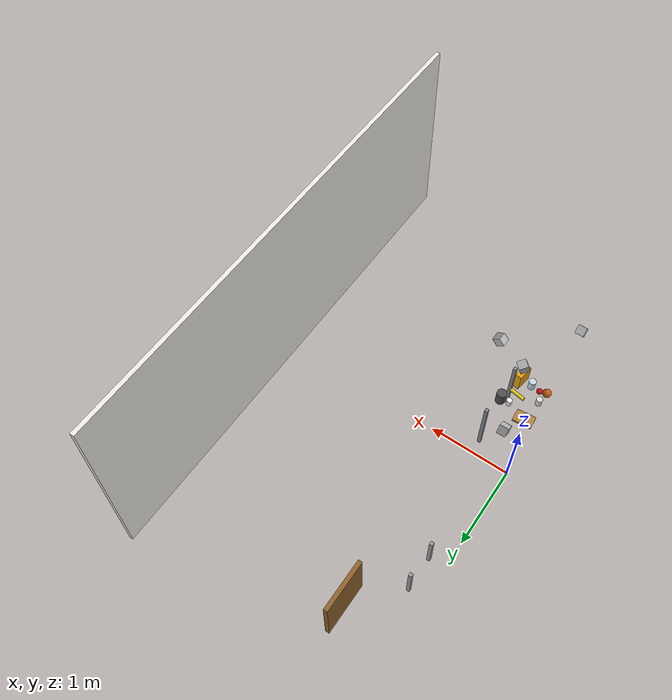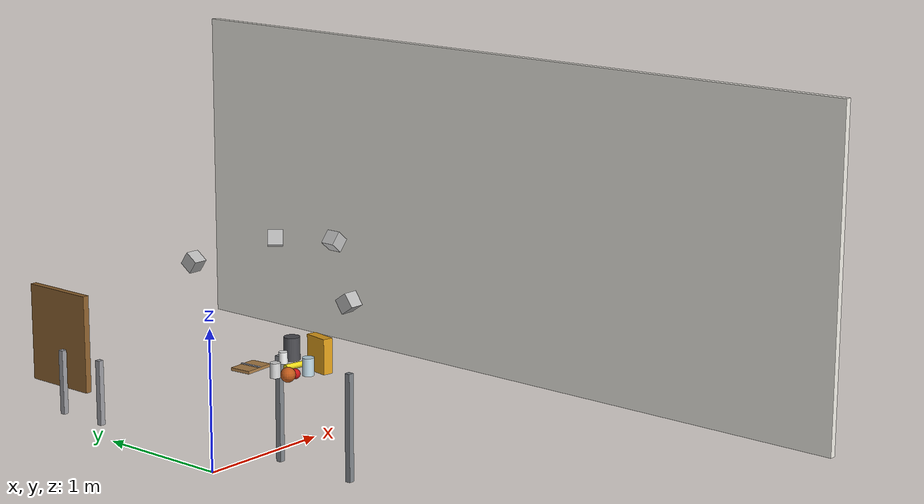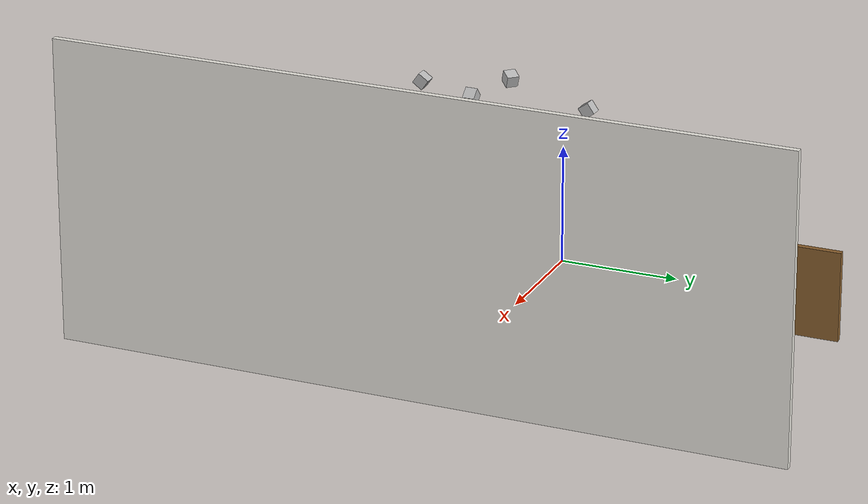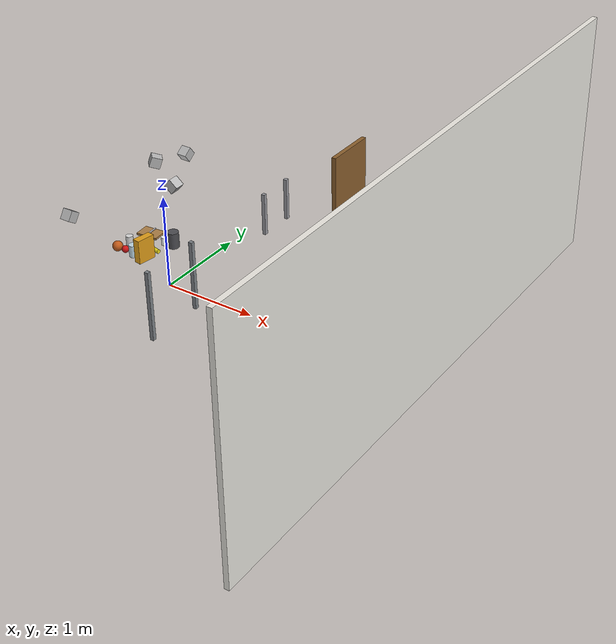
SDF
<sdf version="1.10">
 <world name="bps_room">
  <model name="wall_east">
   <static>true</static>
   <pose>3 0 1.25 0 0 0</pose>
   <link name="link">
    <collision name="collision">
     <geometry><box><size>0.050000000000000003 6 2.5</size></box></geometry>
    </collision>
    <visual name="visual">
     <geometry><box><size>0.050000000000000003 6 2.5</size></box></geometry>
     <material>
      <ambient>0.930000007 0.920000017 0.889999986 1</ambient>
      <diffuse>0.930000007 0.920000017 0.889999986 1</diffuse>
     </material>
    </visual>
    <inertial>
     <mass>1</mass>
     <inertia><ixx>1</ixx><ixy>0</ixy><ixz>0</ixz><iyy>1</iyy><iyz>0</iyz><izz>1</izz></inertia>
    </inertial>
   </link>
  </model>
  <model name="desk_leg_right">
   <static>true</static>
   <pose>0.65000000000000002 2.2999999999999998 0.375 0 0 0</pose>
   <link name="link">
    <collision name="collision">
     <geometry><box><size>0.050000000000000003 0.59999999999999998 0.75</size></box></geometry>
    </collision>
    <visual name="visual">
     <geometry><box><size>0.050000000000000003 0.59999999999999998 0.75</size></box></geometry>
     <material>
      <ambient>0.550000012 0.379999995 0.180000007 1</ambient>
      <diffuse>0.550000012 0.379999995 0.180000007 1</diffuse>
     </material>
    </visual>
    <inertial>
     <mass>1</mass>
     <inertia><ixx>1</ixx><ixy>0</ixy><ixz>0</ixz><iyy>1</iyy><iyz>0</iyz><izz>1</izz></inertia>
    </inertial>
   </link>
  </model>
  <model name="chair_leg_fr">
   <static>true</static>
   <pose>0.20000000000000001 1.3500000000000001 0.23999999999999999 0 0 0</pose>
   <link name="link">
    <collision name="collision">
     <geometry><box><size>0.040000000000000001 0.040000000000000001 0.47999999999999998</size></box></geometry>
    </collision>
    <visual name="visual">
     <geometry><box><size>0.040000000000000001 0.040000000000000001 0.47999999999999998</size></box></geometry>
     <material>
      <ambient>0.600000024 0.600000024 0.620000005 1</ambient>
      <diffuse>0.600000024 0.600000024 0.620000005 1</diffuse>
     </material>
    </visual>
    <inertial>
     <mass>1</mass>
     <inertia><ixx>1</ixx><ixy>0</ixy><ixz>0</ixz><iyy>1</iyy><iyz>0</iyz><izz>1</izz></inertia>
    </inertial>
   </link>
  </model>
  <model name="chair_leg_br">
   <static>true</static>
   <pose>0.20000000000000001 1.75 0.23999999999999999 0 0 0</pose>
   <link name="link">
    <collision name="collision">
     <geometry><box><size>0.040000000000000001 0.040000000000000001 0.47999999999999998</size></box></geometry>
    </collision>
    <visual name="visual">
     <geometry><box><size>0.040000000000000001 0.040000000000000001 0.47999999999999998</size></box></geometry>
     <material>
      <ambient>0.600000024 0.600000024 0.620000005 1</ambient>
      <diffuse>0.600000024 0.600000024 0.620000005 1</diffuse>
     </material>
    </visual>
    <inertial>
     <mass>1</mass>
     <inertia><ixx>1</ixx><ixy>0</ixy><ixz>0</ixz><iyy>1</iyy><iyz>0</iyz><izz>1</izz></inertia>
    </inertial>
   </link>
  </model>
  <model name="table_leg_fr">
   <static>true</static>
   <pose>0.46999999999999997 -0.81999999999999995 0.375 0 0 0</pose>
   <link name="link">
    <collision name="collision">
     <geometry><box><size>0.040000000000000001 0.040000000000000001 0.75</size></box></geometry>
    </collision>
    <visual name="visual">
     <geometry><box><size>0.040000000000000001 0.040000000000000001 0.75</size></box></geometry>
     <material>
      <ambient>0.5 0.519999981 0.540000021 1</ambient>
      <diffuse>0.5 0.519999981 0.540000021 1</diffuse>
     </material>
    </visual>
    <inertial>
     <mass>1</mass>
     <inertia><ixx>1</ixx><ixy>0</ixy><ixz>0</ixz><iyy>1</iyy><iyz>0</iyz><izz>1</izz></inertia>
    </inertial>
   </link>
  </model>
  <model name="table_leg_br">
   <static>true</static>
   <pose>0.46999999999999997 -0.17999999999999999 0.375 0 0 0</pose>
   <link name="link">
    <collision name="collision">
     <geometry><box><size>0.040000000000000001 0.040000000000000001 0.75</size></box></geometry>
    </collision>
    <visual name="visual">
     <geometry><box><size>0.040000000000000001 0.040000000000000001 0.75</size></box></geometry>
     <material>
      <ambient>0.5 0.519999981 0.540000021 1</ambient>
      <diffuse>0.5 0.519999981 0.540000021 1</diffuse>
     </material>
    </visual>
    <inertial>
     <mass>1</mass>
     <inertia><ixx>1</ixx><ixy>0</ixy><ixz>0</ixz><iyy>1</iyy><iyz>0</iyz><izz>1</izz></inertia>
    </inertial>
   </link>
  </model>
  <model name="obj_mug">
   <static>true</static>
   <pose>0.04397289827466011 -0.5601000189781189 0.81999999284744263 0 0 0</pose>
   <link name="link">
    <collision name="collision">
     <geometry>
      <cylinder><radius>0.035000000000000003</radius><length>0.10000000000000001</length></cylinder>
     </geometry>
    </collision>
    <visual name="visual">
     <geometry>
      <cylinder><radius>0.035000000000000003</radius><length>0.10000000000000001</length></cylinder>
     </geometry>
     <material>
      <ambient>0.850000024 0.850000024 0.850000024 1</ambient>
      <diffuse>0.850000024 0.850000024 0.850000024 1</diffuse>
      <specular>0.300000012 0.300000012 0.300000012 1</specular>
     </material>
     <plugin name="gz::sim::systems::Label" filename="gz-sim-label-system"><label>2</label></plugin>
    </visual>
    <inertial>
     <mass>1</mass>
     <inertia><ixx>1</ixx><ixy>0</ixy><ixz>0</ixz><iyy>1</iyy><iyz>0</iyz><izz>1</izz></inertia>
    </inertial>
   </link>
  </model>
  <model name="obj_jar">
   <static>true</static>
   <pose>0.20880027115345001 -0.69999998807907104 0.83499997854232788 0 0 0</pose>
   <link name="link">
    <collision name="collision">
     <geometry><cylinder><radius>0.040000000000000001</radius><length>0.12</length></cylinder></geometry>
    </collision>
    <visual name="visual">
     <geometry><cylinder><radius>0.040000000000000001</radius><length>0.12</length></cylinder></geometry>
     <material>
      <ambient>0.75 0.850000024 0.899999976 1</ambient>
      <diffuse>0.75 0.850000024 0.899999976 1</diffuse>
      <specular>0.600000024 0.600000024 0.600000024 1</specular>
     </material>
     <plugin name="gz::sim::systems::Label" filename="gz-sim-label-system"><label>4</label></plugin>
    </visual>
    <inertial>
     <mass>1</mass>
     <inertia><ixx>1</ixx><ixy>0</ixy><ixz>0</ixz><iyy>1</iyy><iyz>0</iyz><izz>1</izz></inertia>
    </inertial>
   </link>
  </model>
  <model name="obj_cereal_box">
   <static>true</static>
   <pose>0.33500000000000002 -0.68500000000000005 0.89000000000000001 0 0 -0.17449999999999999</pose>
   <link name="link">
    <collision name="collision">
     <geometry><box><size>0.070000000000000007 0.17999999999999999 0.23999999999999999</size></box></geometry>
    </collision>
    <visual name="visual">
     <geometry><box><size>0.070000000000000007 0.17999999999999999 0.23999999999999999</size></box></geometry>
     <material>
      <ambient>0.879999995 0.620000005 0.100000001 1</ambient>
      <diffuse>0.879999995 0.620000005 0.100000001 1</diffuse>
      <specular>0.200000003 0.200000003 0.200000003 1</specular>
     </material>
     <plugin name="gz::sim::systems::Label" filename="gz-sim-label-system"><label>5</label></plugin>
    </visual>
    <inertial>
     <mass>1</mass>
     <inertia><ixx>1</ixx><ixy>0</ixy><ixz>0</ixz><iyy>1</iyy><iyz>0</iyz><izz>1</izz></inertia>
    </inertial>
   </link>
  </model>
  <model name="obj_banana">
   <static>true</static>
   <pose>0.28413727879524231 -0.52103340625762939 0.79000020027160645 1.5708000019094897 5.2218038781859404e-08 1.3963000140670436</pose>
   <link name="link">
    <collision name="collision">
     <geometry><cylinder><radius>0.02</radius><length>0.17999999999999999</length></cylinder></geometry>
    </collision>
    <visual name="visual">
     <geometry><cylinder><radius>0.02</radius><length>0.17999999999999999</length></cylinder></geometry>
     <material>
      <ambient>0.920000017 0.850000024 0.100000001 1</ambient>
      <diffuse>0.920000017 0.850000024 0.100000001 1</diffuse>
      <specular>0.300000012 0.300000012 0.300000012 1</specular>
     </material>
     <plugin name="gz::sim::systems::Label" filename="gz-sim-label-system"><label>6</label></plugin>
    </visual>
    <inertial>
     <mass>1</mass>
     <inertia><ixx>1</ixx><ixy>0</ixy><ixz>0</ixz><iyy>1</iyy><iyz>0</iyz><izz>1</izz></inertia>
    </inertial>
   </link>
  </model>
  <model name="obj_bowl">
   <static>true</static>
   <pose>0.02 -0.69999999999999996 0.81999999999999995 0 0 0</pose>
   <link name="link">
    <collision name="collision">
     <geometry><sphere><radius>0.050000000000000003</radius></sphere></geometry>
    </collision>
    <visual name="visual">
     <geometry><sphere><radius>0.050000000000000003</radius></sphere></geometry>
     <material>
      <ambient>0.75 0.349999994 0.100000001 1</ambient>
      <diffuse>0.75 0.349999994 0.100000001 1</diffuse>
      <specular>0.300000012 0.300000012 0.300000012 1</specular>
     </material>
     <plugin name="gz::sim::systems::Label" filename="gz-sim-label-system"><label>7</label></plugin>
    </visual>
    <inertial>
     <mass>1</mass>
     <inertia><ixx>1</ixx><ixy>0</ixy><ixz>0</ixz><iyy>1</iyy><iyz>0</iyz><izz>1</izz></inertia>
    </inertial>
   </link>
  </model>
  <model name="obj_apple">
   <static>true</static>
   <pose>0.10000000000000001 -0.68500000000000005 0.80500000000000005 0 0 0</pose>
   <link name="link">
    <collision name="collision">
     <geometry><sphere><radius>0.035000000000000003</radius></sphere></geometry>
    </collision>
    <visual name="visual">
     <geometry><sphere><radius>0.035000000000000003</radius></sphere></geometry>
     <material>
      <ambient>0.800000012 0.0799999982 0.0799999982 1</ambient>
      <diffuse>0.800000012 0.0799999982 0.0799999982 1</diffuse>
      <specular>0.400000006 0.400000006 0.400000006 1</specular>
     </material>
     <plugin name="gz::sim::systems::Label" filename="gz-sim-label-system"><label>8</label></plugin>
    </visual>
    <inertial>
     <mass>1</mass>
     <inertia><ixx>1</ixx><ixy>0</ixy><ixz>0</ixz><iyy>1</iyy><iyz>0</iyz><izz>1</izz></inertia>
    </inertial>
   </link>
  </model>
  <model name="obj_kettle">
   <static>true</static>
   <pose>0.40999999999999998 -0.35999999999999999 0.84999999999999998 0 0 0</pose>
   <link name="link">
    <collision name="collision">
     <geometry><cylinder><radius>0.055</radius><length>0.16</length></cylinder></geometry>
    </collision>
    <visual name="visual">
     <geometry><cylinder><radius>0.055</radius><length>0.16</length></cylinder></geometry>
     <material>
      <ambient>0.300000012 0.300000012 0.319999993 1</ambient>
      <diffuse>0.300000012 0.300000012 0.319999993 1</diffuse>
      <specular>0.600000024 0.600000024 0.600000024 1</specular>
     </material>
     <plugin name="gz::sim::systems::Label" filename="gz-sim-label-system"><label>13</label></plugin>
    </visual>
    <inertial>
     <mass>1</mass>
     <inertia><ixx>1</ixx><ixy>0</ixy><ixz>0</ixz><iyy>1</iyy><iyz>0</iyz><izz>1</izz></inertia>
    </inertial>
   </link>
  </model>
  <model name="obj_cup">
   <static>true</static>
   <pose>0.31 -0.375 0.81000000000000005 0 0 0</pose>
   <link name="link">
    <collision name="collision">
     <geometry>
      <cylinder><radius>0.029999999999999999</radius><length>0.080000000000000002</length></cylinder>
     </geometry>
    </collision>
    <visual name="visual">
     <geometry>
      <cylinder><radius>0.029999999999999999</radius><length>0.080000000000000002</length></cylinder>
     </geometry>
     <material>
      <ambient>0.949999988 0.949999988 0.949999988 1</ambient>
      <diffuse>0.949999988 0.949999988 0.949999988 1</diffuse>
      <specular>0.300000012 0.300000012 0.300000012 1</specular>
     </material>
     <plugin name="gz::sim::systems::Label" filename="gz-sim-label-system"><label>14</label></plugin>
    </visual>
    <inertial>
     <mass>1</mass>
     <inertia><ixx>1</ixx><ixy>0</ixy><ixz>0</ixz><iyy>1</iyy><iyz>0</iyz><izz>1</izz></inertia>
    </inertial>
   </link>
  </model>
  <model name="obj_chopping_board">
   <static>true</static>
   <pose>0.080000000000000002 -0.29999999999999999 0.78000000000000003 0 0 0.087300000000000016</pose>
   <link name="link">
    <collision name="collision">
     <geometry><box><size>0.22 0.14999999999999999 0.02</size></box></geometry>
    </collision>
    <visual name="visual">
     <geometry><box><size>0.22 0.14999999999999999 0.02</size></box></geometry>
     <material>
      <ambient>0.680000007 0.5 0.280000001 1</ambient>
      <diffuse>0.680000007 0.5 0.280000001 1</diffuse>
      <specular>0.200000003 0.200000003 0.200000003 1</specular>
     </material>
     <plugin name="gz::sim::systems::Label" filename="gz-sim-label-system"><label>15</label></plugin>
    </visual>
    <inertial>
     <mass>1</mass>
     <inertia><ixx>1</ixx><ixy>0</ixy><ixz>0</ixz><iyy>1</iyy><iyz>0</iyz><izz>1</izz></inertia>
    </inertial>
   </link>
  </model>
  <model name="obj_knife">
   <static>true</static>
   <pose>0.080000000000000002 -0.29999999999999999 0.79300000000000004 0 0 0.087300000000000016</pose>
   <link name="link">
    <collision name="collision">
     <geometry><box><size>0.014999999999999999 0.16 0.0060000000000000001</size></box></geometry>
    </collision>
    <visual name="visual">
     <geometry><box><size>0.014999999999999999 0.16 0.0060000000000000001</size></box></geometry>
     <material>
      <ambient>0.75 0.75 0.779999971 1</ambient>
      <diffuse>0.75 0.75 0.779999971 1</diffuse>
      <specular>0.699999988 0.699999988 0.699999988 1</specular>
     </material>
     <plugin name="gz::sim::systems::Label" filename="gz-sim-label-system"><label>16</label></plugin>
    </visual>
    <inertial>
     <mass>1</mass>
     <inertia><ixx>1</ixx><ixy>0</ixy><ixz>0</ixz><iyy>1</iyy><iyz>0</iyz><izz>1</izz></inertia>
    </inertial>
   </link>
  </model>
  <model name="depth_camera_v2">
   <static>true</static>
   <pose>0.7011987671995767 -0.49659211333841086 1.581325701523233 0.0 0.8726646259971648 3.141592653589793</pose>
   <link name="link">
    <pose>0.050000000000000003 0.050000000000000003 0.050000000000000003 0 0 0</pose>
    <inertial>
     <mass>0.10000000000000001</mass>
     <inertia>
      <ixx>0.00016666700000000001</ixx>
      <iyy>0.00016666700000000001</iyy>
      <izz>0.00016666700000000001</izz>
      <ixy>0</ixy>
      <ixz>0</ixz>
      <iyz>0</iyz>
     </inertia>
    </inertial>
    <collision name="collision">
     <geometry><box><size>0.10000000000000001 0.10000000000000001 0.10000000000000001</size></box></geometry>
    </collision>
    <visual name="visual">
     <geometry><box><size>0.10000000000000001 0.10000000000000001 0.10000000000000001</size></box></geometry>
    </visual>
    <sensor name="depth_camera2" type="depth_camera">
     <topic>depth_camera_v2</topic>
     <update_rate>10</update_rate>
     <enable_metrics>false</enable_metrics>
     <camera>
      <horizontal_fov>1.2</horizontal_fov>
      <image>
       <width>640</width>
       <height>480</height>
       <format>R_FLOAT32</format>
       <anti_aliasing>4</anti_aliasing>
      </image>
      <camera_info_topic>__default__</camera_info_topic>
      <triggered>false</triggered>
      <clip><near>0.10000000000000001</near><far>2</far></clip>
      <save enabled="false"><path>__default__</path></save>
      <visibility_mask>4294967295</visibility_mask>
      <noise><type>none</type><mean>0</mean><stddev>0</stddev></noise>
      <distortion><k1>0</k1><k2>0</k2><k3>0</k3><p1>0</p1><p2>0</p2><center>0.5 0.5</center></distortion>
      <lens>
       <type>stereographic</type>
       <scale_to_hfov>true</scale_to_hfov>
       <cutoff_angle>1.5707963267948966</cutoff_angle>
       <env_texture_size>256</env_texture_size>
      </lens>
     </camera>
    </sensor>
    <sensor name="rgb_camera2" type="camera">
     <topic>rgb_camera_v2</topic>
     <update_rate>10</update_rate>
     <enable_metrics>false</enable_metrics>
     <camera>
      <horizontal_fov>1.2</horizontal_fov>
      <image><width>640</width><height>480</height><format>RGB_INT8</format><anti_aliasing>4</anti_aliasing></image>
      <camera_info_topic>__default__</camera_info_topic>
      <triggered>false</triggered>
      <clip><near>0.10000000000000001</near><far>2</far></clip>
      <save enabled="false"><path>__default__</path></save>
      <visibility_mask>4294967295</visibility_mask>
      <noise><type>none</type><mean>0</mean><stddev>0</stddev></noise>
      <distortion><k1>0</k1><k2>0</k2><k3>0</k3><p1>0</p1><p2>0</p2><center>0.5 0.5</center></distortion>
      <lens>
       <type>stereographic</type>
       <scale_to_hfov>true</scale_to_hfov>
       <cutoff_angle>1.5707963267948966</cutoff_angle>
       <env_texture_size>256</env_texture_size>
      </lens>
     </camera>
    </sensor>
    <sensor name="semantic_camera2" type="segmentation_camera">
     <topic>semantic_camera_v2</topic>
     <update_rate>10</update_rate>
     <enable_metrics>false</enable_metrics>
     <camera>
      <horizontal_fov>1.2</horizontal_fov>
      <image><width>640</width><height>480</height></image>
      <clip><near>0.1</near><far>100</far></clip>
      <segmentation_type>semantic</segmentation_type>
     </camera>
    </sensor>
   </link>
  </model>
  <model name="depth_camera_v3">
   <static>true</static>
   <pose>0.058411157513037375 0.32255993095058094 1.388857694755301 -0.0 0.6108652381980154 -1.5707963267948968</pose>
   <link name="link">
    <pose>0.050000000000000003 0.050000000000000003 0.050000000000000003 0 0 0</pose>
    <inertial>
     <mass>0.10000000000000001</mass>
     <inertia>
      <ixx>0.00016666700000000001</ixx>
      <iyy>0.00016666700000000001</iyy>
      <izz>0.00016666700000000001</izz>
      <ixy>0</ixy>
      <ixz>0</ixz>
      <iyz>0</iyz>
     </inertia>
    </inertial>
    <collision name="collision">
     <geometry><box><size>0.10000000000000001 0.10000000000000001 0.10000000000000001</size></box></geometry>
    </collision>
    <visual name="visual">
     <geometry><box><size>0.10000000000000001 0.10000000000000001 0.10000000000000001</size></box></geometry>
    </visual>
    <sensor name="depth_camera3" type="depth_camera">
     <topic>depth_camera_v3</topic>
     <update_rate>10</update_rate>
     <enable_metrics>false</enable_metrics>
     <camera>
      <horizontal_fov>1.2</horizontal_fov>
      <image>
       <width>640</width>
       <height>480</height>
       <format>R_FLOAT32</format>
       <anti_aliasing>4</anti_aliasing>
      </image>
      <camera_info_topic>__default__</camera_info_topic>
      <triggered>false</triggered>
      <clip><near>0.10000000000000001</near><far>2</far></clip>
      <save enabled="false"><path>__default__</path></save>
      <visibility_mask>4294967295</visibility_mask>
      <noise><type>none</type><mean>0</mean><stddev>0</stddev></noise>
      <distortion><k1>0</k1><k2>0</k2><k3>0</k3><p1>0</p1><p2>0</p2><center>0.5 0.5</center></distortion>
      <lens>
       <type>stereographic</type>
       <scale_to_hfov>true</scale_to_hfov>
       <cutoff_angle>1.5707963267948966</cutoff_angle>
       <env_texture_size>256</env_texture_size>
      </lens>
     </camera>
    </sensor>
    <sensor name="rgb_camera3" type="camera">
     <topic>rgb_camera_v3</topic>
     <update_rate>10</update_rate>
     <enable_metrics>false</enable_metrics>
     <camera>
      <horizontal_fov>1.2</horizontal_fov>
      <image><width>640</width><height>480</height><format>RGB_INT8</format><anti_aliasing>4</anti_aliasing></image>
      <camera_info_topic>__default__</camera_info_topic>
      <triggered>false</triggered>
      <clip><near>0.10000000000000001</near><far>2</far></clip>
      <save enabled="false"><path>__default__</path></save>
      <visibility_mask>4294967295</visibility_mask>
      <noise><type>none</type><mean>0</mean><stddev>0</stddev></noise>
      <distortion><k1>0</k1><k2>0</k2><k3>0</k3><p1>0</p1><p2>0</p2><center>0.5 0.5</center></distortion>
      <lens>
       <type>stereographic</type>
       <scale_to_hfov>true</scale_to_hfov>
       <cutoff_angle>1.5707963267948966</cutoff_angle>
       <env_texture_size>256</env_texture_size>
      </lens>
     </camera>
    </sensor>
    <sensor name="semantic_camera3" type="segmentation_camera">
     <topic>semantic_camera_v3</topic>
     <update_rate>10</update_rate>
     <enable_metrics>false</enable_metrics>
     <camera>
      <horizontal_fov>1.2</horizontal_fov>
      <image><width>640</width><height>480</height></image>
      <clip><near>0.1</near><far>100</far></clip>
      <segmentation_type>semantic</segmentation_type>
     </camera>
    </sensor>
   </link>
  </model>
  <model name="depth_camera_v5">
   <static>true</static>
   <pose>0.058411157513037174 -1.3157441576274027 1.388857694755301 -0.0 0.6108652381980154 1.5707963267948963</pose>
   <link name="link">
    <pose>0.050000000000000003 0.050000000000000003 0.050000000000000003 0 0 0</pose>
    <inertial>
     <mass>0.10000000000000001</mass>
     <inertia>
      <ixx>0.00016666700000000001</ixx>
      <iyy>0.00016666700000000001</iyy>
      <izz>0.00016666700000000001</izz>
      <ixy>0</ixy>
      <ixz>0</ixz>
      <iyz>0</iyz>
     </inertia>
    </inertial>
    <collision name="collision">
     <geometry><box><size>0.10000000000000001 0.10000000000000001 0.10000000000000001</size></box></geometry>
    </collision>
    <visual name="visual">
     <geometry><box><size>0.10000000000000001 0.10000000000000001 0.10000000000000001</size></box></geometry>
    </visual>
    <sensor name="depth_camera5" type="depth_camera">
     <topic>depth_camera_v5</topic>
     <update_rate>10</update_rate>
     <enable_metrics>false</enable_metrics>
     <camera>
      <horizontal_fov>1.2</horizontal_fov>
      <image>
       <width>640</width>
       <height>480</height>
       <format>R_FLOAT32</format>
       <anti_aliasing>4</anti_aliasing>
      </image>
      <camera_info_topic>__default__</camera_info_topic>
      <triggered>false</triggered>
      <clip><near>0.10000000000000001</near><far>2</far></clip>
      <save enabled="false"><path>__default__</path></save>
      <visibility_mask>4294967295</visibility_mask>
      <noise><type>none</type><mean>0</mean><stddev>0</stddev></noise>
      <distortion><k1>0</k1><k2>0</k2><k3>0</k3><p1>0</p1><p2>0</p2><center>0.5 0.5</center></distortion>
      <lens>
       <type>stereographic</type>
       <scale_to_hfov>true</scale_to_hfov>
       <cutoff_angle>1.5707963267948966</cutoff_angle>
       <env_texture_size>256</env_texture_size>
      </lens>
     </camera>
    </sensor>
    <sensor name="rgb_camera5" type="camera">
     <topic>rgb_camera_v5</topic>
     <update_rate>10</update_rate>
     <enable_metrics>false</enable_metrics>
     <camera>
      <horizontal_fov>1.2</horizontal_fov>
      <image><width>640</width><height>480</height><format>RGB_INT8</format><anti_aliasing>4</anti_aliasing></image>
      <camera_info_topic>__default__</camera_info_topic>
      <triggered>false</triggered>
      <clip><near>0.10000000000000001</near><far>2</far></clip>
      <save enabled="false"><path>__default__</path></save>
      <visibility_mask>4294967295</visibility_mask>
      <noise><type>none</type><mean>0</mean><stddev>0</stddev></noise>
      <distortion><k1>0</k1><k2>0</k2><k3>0</k3><p1>0</p1><p2>0</p2><center>0.5 0.5</center></distortion>
      <lens>
       <type>stereographic</type>
       <scale_to_hfov>true</scale_to_hfov>
       <cutoff_angle>1.5707963267948966</cutoff_angle>
       <env_texture_size>256</env_texture_size>
      </lens>
     </camera>
    </sensor>
    <sensor name="semantic_camera5" type="segmentation_camera">
     <topic>semantic_camera_v5</topic>
     <update_rate>10</update_rate>
     <enable_metrics>false</enable_metrics>
     <camera>
      <horizontal_fov>1.2</horizontal_fov>
      <image><width>640</width><height>480</height></image>
      <clip><near>0.1</near><far>100</far></clip>
      <segmentation_type>semantic</segmentation_type>
     </camera>
    </sensor>
   </link>
  </model>
  <model name="depth_camera_v6">
   <static>true</static>
   <pose>0.27607144389621513 -0.2789318269552331 1.6610046171115724 -0.0 1.2217304763960306 -2.356194490192345</pose>
   <link name="link">
    <pose>0.050000000000000003 0.050000000000000003 0.050000000000000003 0 0 0</pose>
    <inertial>
     <mass>0.10000000000000001</mass>
     <inertia>
      <ixx>0.00016666700000000001</ixx>
      <iyy>0.00016666700000000001</iyy>
      <izz>0.00016666700000000001</izz>
      <ixy>0</ixy>
      <ixz>0</ixz>
      <iyz>0</iyz>
     </inertia>
    </inertial>
    <collision name="collision">
     <geometry><box><size>0.10000000000000001 0.10000000000000001 0.10000000000000001</size></box></geometry>
    </collision>
    <visual name="visual">
     <geometry><box><size>0.10000000000000001 0.10000000000000001 0.10000000000000001</size></box></geometry>
    </visual>
    <sensor name="depth_camera6" type="depth_camera">
     <topic>depth_camera_v6</topic>
     <update_rate>10</update_rate>
     <enable_metrics>false</enable_metrics>
     <camera>
      <horizontal_fov>1.2</horizontal_fov>
      <image>
       <width>640</width>
       <height>480</height>
       <format>R_FLOAT32</format>
       <anti_aliasing>4</anti_aliasing>
      </image>
      <camera_info_topic>__default__</camera_info_topic>
      <triggered>false</triggered>
      <clip><near>0.10000000000000001</near><far>2</far></clip>
      <save enabled="false"><path>__default__</path></save>
      <visibility_mask>4294967295</visibility_mask>
      <noise><type>none</type><mean>0</mean><stddev>0</stddev></noise>
      <distortion><k1>0</k1><k2>0</k2><k3>0</k3><p1>0</p1><p2>0</p2><center>0.5 0.5</center></distortion>
      <lens>
       <type>stereographic</type>
       <scale_to_hfov>true</scale_to_hfov>
       <cutoff_angle>1.5707963267948966</cutoff_angle>
       <env_texture_size>256</env_texture_size>
      </lens>
     </camera>
    </sensor>
    <sensor name="rgb_camera6" type="camera">
     <topic>rgb_camera_v6</topic>
     <update_rate>10</update_rate>
     <enable_metrics>false</enable_metrics>
     <camera>
      <horizontal_fov>1.2</horizontal_fov>
      <image><width>640</width><height>480</height><format>RGB_INT8</format><anti_aliasing>4</anti_aliasing></image>
      <camera_info_topic>__default__</camera_info_topic>
      <triggered>false</triggered>
      <clip><near>0.10000000000000001</near><far>2</far></clip>
      <save enabled="false"><path>__default__</path></save>
      <visibility_mask>4294967295</visibility_mask>
      <noise><type>none</type><mean>0</mean><stddev>0</stddev></noise>
      <distortion><k1>0</k1><k2>0</k2><k3>0</k3><p1>0</p1><p2>0</p2><center>0.5 0.5</center></distortion>
      <lens>
       <type>stereographic</type>
       <scale_to_hfov>true</scale_to_hfov>
       <cutoff_angle>1.5707963267948966</cutoff_angle>
       <env_texture_size>256</env_texture_size>
      </lens>
     </camera>
    </sensor>
    <sensor name="semantic_camera6" type="segmentation_camera">
     <topic>semantic_camera_v6</topic>
     <update_rate>10</update_rate>
     <enable_metrics>false</enable_metrics>
     <camera>
      <horizontal_fov>1.2</horizontal_fov>
      <image><width>640</width><height>480</height></image>
      <clip><near>0.1</near><far>100</far></clip>
      <segmentation_type>semantic</segmentation_type>
     </camera>
    </sensor>
   </link>
  </model>
 </world>
</sdf>
